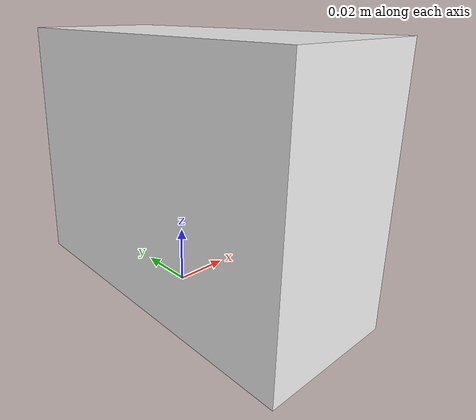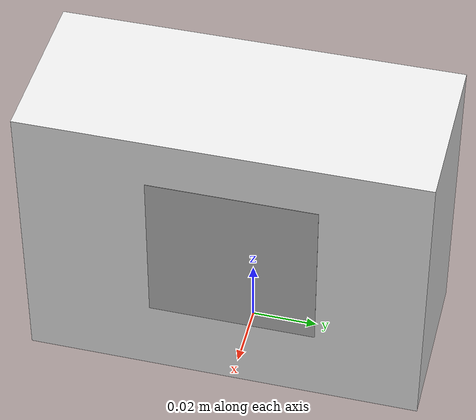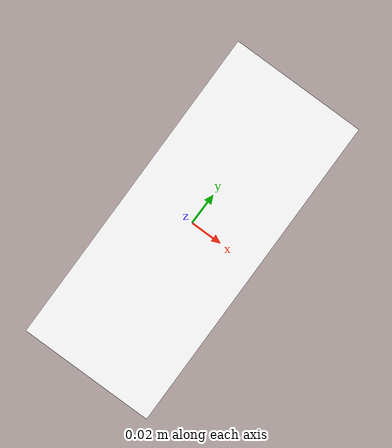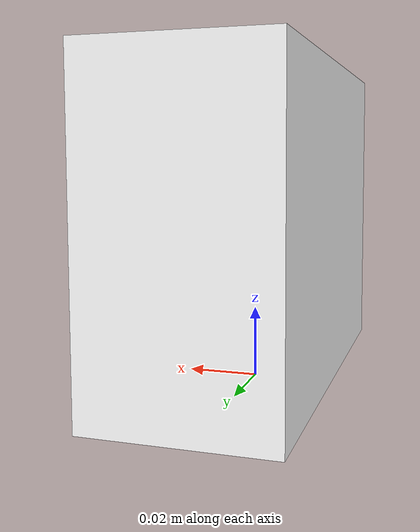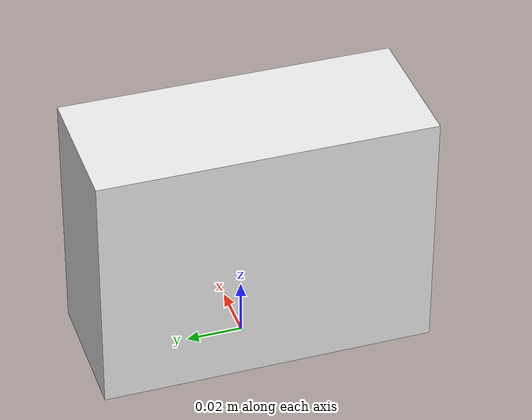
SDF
<?xml version='1.0'?>
<sdf version='1.7'>
  <model name='small_marker_charge_pile'>
    <link name='link_0'>
      <inertial>
        <mass>10</mass>
        <inertia>
          <ixx>0.01875</ixx>
          <ixy>0</ixy>
          <ixz>0</ixz>
          <iyy>0.00883333</iyy>
          <iyz>0</iyz>
          <izz>0.0140833</izz>
        </inertia>
        <pose>0 0 0 0 -0 0</pose>
      </inertial>
      <pose>0.002297 -0.003336 0.045 0 -0 0</pose>
      <gravity>1</gravity>
      <self_collide>0</self_collide>
      <kinematic>0</kinematic>
      <enable_wind>0</enable_wind>
      <visual name='visual'>
        <pose>0 0 0 0 -0 0</pose>
        <geometry>
          <box>
            <size>0.05 0.12 0.09</size>
          </box>
        </geometry>
        <material>
          <lighting>1</lighting>
          <script>
            <uri>file://media/materials/scripts/gazebo.material</uri>
            <name>Gazebo/White</name>
          </script>
          <shader type='pixel'>
            <normal_map>__default__</normal_map>
          </shader>
          <ambient>1 1 1 1</ambient>
          <diffuse>1 1 1 1</diffuse>
          <specular>1 1 1 1</specular>
          <emissive>0 0 0 1</emissive>
        </material>
        <transparency>0</transparency>
        <cast_shadows>1</cast_shadows>
      </visual>
      <collision name='collision'>
        <laser_retro>0</laser_retro>
        <max_contacts>10</max_contacts>
        <pose>0 0 0 0 -0 0</pose>
        <geometry>
          <box>
            <size>0.05 0.12 0.09</size>
          </box>
        </geometry>
        <surface>
          <friction>
            <ode>
              <mu>1</mu>
              <mu2>1</mu2>
              <fdir1>0 0 0</fdir1>
              <slip1>0</slip1>
              <slip2>0</slip2>
            </ode>
            <torsional>
              <coefficient>1</coefficient>
              <patch_radius>0</patch_radius>
              <surface_radius>0</surface_radius>
              <use_patch_radius>1</use_patch_radius>
              <ode>
                <slip>0</slip>
              </ode>
            </torsional>
          </friction>
          <bounce>
            <restitution_coefficient>0</restitution_coefficient>
            <threshold>1e+06</threshold>
          </bounce>
          <contact>
            <collide_without_contact>0</collide_without_contact>
            <collide_without_contact_bitmask>1</collide_without_contact_bitmask>
            <collide_bitmask>1</collide_bitmask>
            <ode>
              <soft_cfm>0</soft_cfm>
              <soft_erp>0.2</soft_erp>
              <kp>1e+13</kp>
              <kd>1</kd>
              <max_vel>0.01</max_vel>
              <min_depth>0</min_depth>
            </ode>
            <bullet>
              <split_impulse>1</split_impulse>
              <split_impulse_penetration_threshold>-0.01</split_impulse_penetration_threshold>
              <soft_cfm>0</soft_cfm>
              <soft_erp>0.2</soft_erp>
              <kp>1e+13</kp>
              <kd>1</kd>
            </bullet>
          </contact>
        </surface>
      </collision>
    </link>
    <link name='link_1'>
      <inertial>
        <mass>1</mass>
        <inertia>
          <ixx>0.166667</ixx>
          <ixy>0</ixy>
          <ixz>0</ixz>
          <iyy>0.166667</iyy>
          <iyz>0</iyz>
          <izz>0.166667</izz>
        </inertia>
        <pose>0 0 0 0 -0 0</pose>
      </inertial>
      <pose>0.028 0.0 0.05 0 -0 0</pose>
      <gravity>1</gravity>
      <self_collide>0</self_collide>
      <kinematic>0</kinematic>
      <enable_wind>0</enable_wind>
      <visual name='visual'>
        <pose>0 0 0 0 -0 0</pose>
        <geometry>
          <box>
            <size>0.0001 0.05 0.05</size>
          </box>
        </geometry>
        <material>
          <lighting>1</lighting>
          <script>
            <uri>model://small_marker_charge_pile/materials/textures</uri>
            <uri>model://small_marker_charge_pile/materials/scripts</uri>
            <name>reinovo/ar_track_0</name>
          </script>
          <shader type='pixel'>
            <normal_map>__default__</normal_map>
          </shader>
          <specular>0.01 0.01 0.01 1</specular>
          <emissive>0 0 0 1</emissive>
        </material>
        <transparency>0</transparency>
        <cast_shadows>1</cast_shadows>
      </visual>
      <collision name='collision'>
        <laser_retro>0</laser_retro>
        <max_contacts>10</max_contacts>
        <pose>0 0 0 0 -0 0</pose>
        <geometry>
          <box>
            <size>0.001 0.05 0.05</size>
          </box>
        </geometry>
        <surface>
          <friction>
            <ode>
              <mu>1</mu>
              <mu2>1</mu2>
              <fdir1>0 0 0</fdir1>
              <slip1>0</slip1>
              <slip2>0</slip2>
            </ode>
            <torsional>
              <coefficient>1</coefficient>
              <patch_radius>0</patch_radius>
              <surface_radius>0</surface_radius>
              <use_patch_radius>1</use_patch_radius>
              <ode>
                <slip>0</slip>
              </ode>
            </torsional>
          </friction>
          <bounce>
            <restitution_coefficient>0</restitution_coefficient>
            <threshold>1e+06</threshold>
          </bounce>
          <contact>
            <collide_without_contact>0</collide_without_contact>
            <collide_without_contact_bitmask>1</collide_without_contact_bitmask>
            <collide_bitmask>1</collide_bitmask>
            <ode>
              <soft_cfm>0</soft_cfm>
              <soft_erp>0.2</soft_erp>
              <kp>1e+13</kp>
              <kd>1</kd>
              <max_vel>0.01</max_vel>
              <min_depth>0</min_depth>
            </ode>
            <bullet>
              <split_impulse>1</split_impulse>
              <split_impulse_penetration_threshold>-0.01</split_impulse_penetration_threshold>
              <soft_cfm>0</soft_cfm>
              <soft_erp>0.2</soft_erp>
              <kp>1e+13</kp>
              <kd>1</kd>
            </bullet>
          </contact>
        </surface>
      </collision>
    </link>
    <joint name='link_0_JOINT_0' type='fixed'>
      <parent>link_0</parent>
      <child>link_1</child>
      <pose>0 0 0 0 -0 0</pose>
      <physics>
        <ode>
          <limit>
            <cfm>0</cfm>
            <erp>0.2</erp>
          </limit>
          <suspension>
            <cfm>0</cfm>
            <erp>0.2</erp>
          </suspension>
        </ode>
      </physics>
    </joint>
    <static>0</static>
    <allow_auto_disable>1</allow_auto_disable>
  </model>
</sdf>
